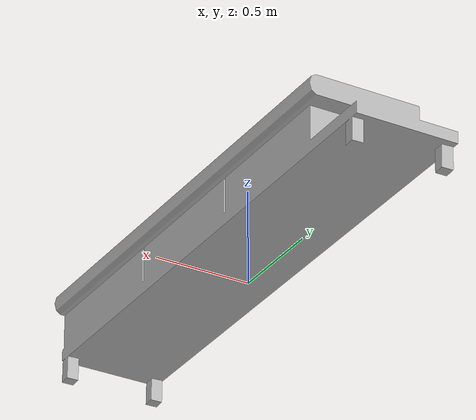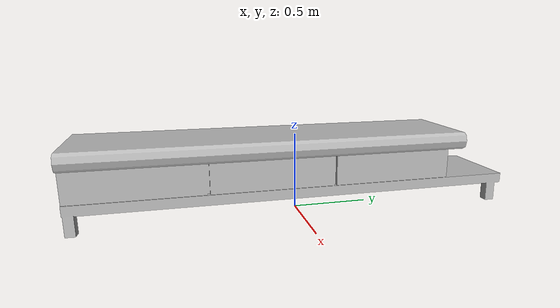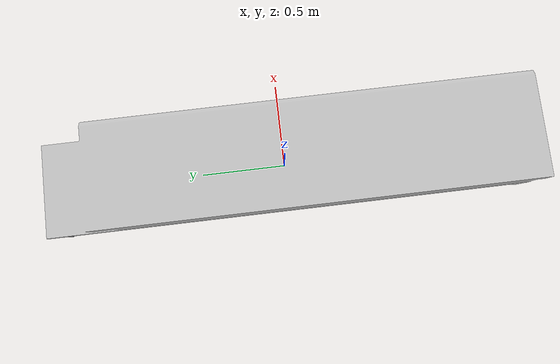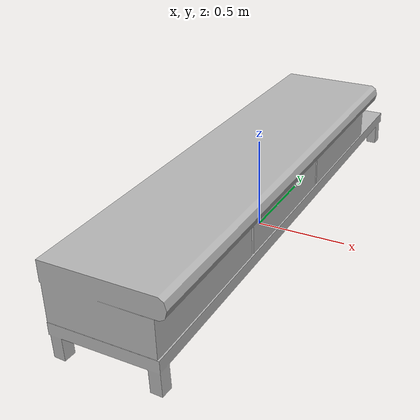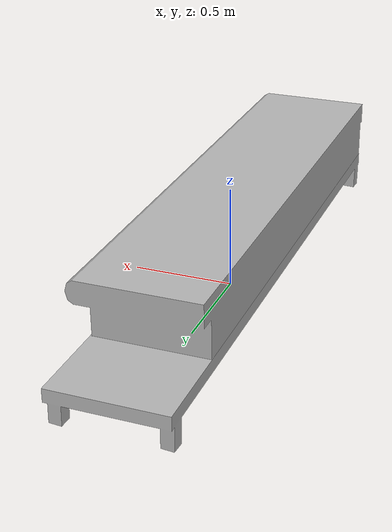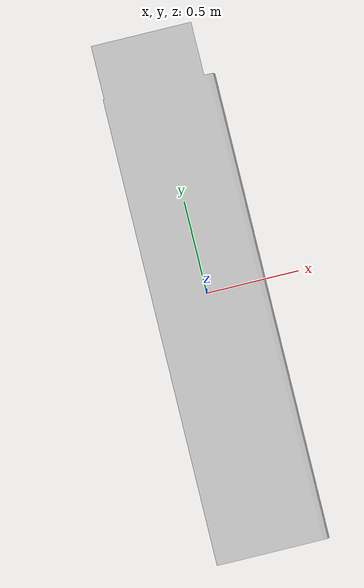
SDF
<?xml version="1.0"?>
<sdf version="1.6">
  <model name="aws_robomaker_residential_TVCabinet_01">
    <link name="link_TVCabinet_01">
      <inertial>
        <mass>59.2</mass>
        <inertia>
          <ixx>30.4</ixx>
          <ixy>0</ixy>
          <ixz>0</ixz>
          <iyy>2.56</iyy>
          <iyz>0</iyz>
          <izz>31.38</izz>
        </inertia>
      </inertial>
      <collision name="collision">
        <geometry>
          <mesh>
            <uri>model://aws_robomaker_residential_TVCabinet_01/meshes/aws_TVCabinet_01_collision.DAE</uri>
            <scale>1 1 1</scale>
          </mesh>
        </geometry>
      </collision>
      <visual name="visual">
        <geometry>
          <mesh>
            <uri>model://aws_robomaker_residential_TVCabinet_01/meshes/aws_TVCabinet_01_visual.DAE</uri>
          </mesh>
        </geometry>
        <meta>
          <layer> 1 </layer>
        </meta>
      </visual>
    </link>
    <static>1</static>
  </model>
</sdf>
